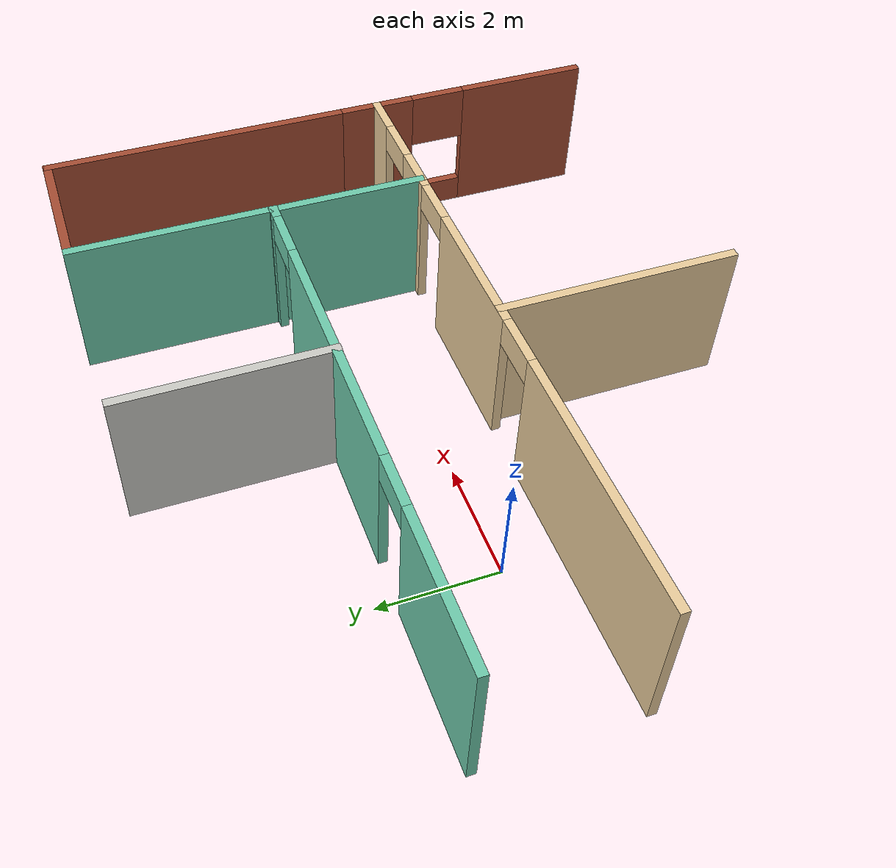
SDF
<sdf version="1.6">
 <model name="MyHouse">
  <link name="Wall_24">
   <pose>1.825 1.61043 0 0 -0 0</pose>
   <visual name="Wall_24_Visual_4">
    <pose>3.83485 0 2.25 0 -0 0</pose>
    <geometry><box><size>0.9 0.15 0.5</size></box></geometry>
    <material>
     <script><uri>file://media/materials/scripts/gazebo.material</uri><name>Gazebo/Grey</name></script>
     <ambient>0.435294 0.796078 0.67451 1</ambient>
    </material>
    <meta><layer>0</layer></meta>
   </visual>
   <visual name="Wall_24_Visual_3">
    <pose>-1.53839 0 2.25 0 -0 0</pose>
    <geometry><box><size>0.9 0.15 0.5</size></box></geometry>
    <material>
     <script><uri>file://media/materials/scripts/gazebo.material</uri><name>Gazebo/Grey</name></script>
     <ambient>0.435294 0.796078 0.67451 1</ambient>
    </material>
    <meta><layer>0</layer></meta>
   </visual>
   <visual name="Wall_24_Visual_0">
    <pose>-3.28169 0 1.25 0 -0 0</pose>
    <geometry><box><size>2.58661 0.15 2.5</size></box></geometry>
    <material>
     <script><uri>file://media/materials/scripts/gazebo.material</uri><name>Gazebo/Grey</name></script>
     <ambient>0.435294 0.796078 0.67451 1</ambient>
    </material>
    <meta><layer>0</layer></meta>
   </visual>
   <visual name="Wall_24_Visual_2">
    <pose>4.42993 0 1.25 0 -0 0</pose>
    <geometry><box><size>0.290146 0.15 2.5</size></box></geometry>
    <material>
     <script><uri>file://media/materials/scripts/gazebo.material</uri><name>Gazebo/Grey</name></script>
     <ambient>0.435294 0.796078 0.67451 1</ambient>
    </material>
    <meta><layer>0</layer></meta>
   </visual>
   <visual name="Wall_24_Visual_1">
    <pose>1.14823 0 1.25 0 -0 0</pose>
    <geometry><box><size>4.47324 0.15 2.5</size></box></geometry>
    <material>
     <script><uri>file://media/materials/scripts/gazebo.material</uri><name>Gazebo/Grey</name></script>
     <ambient>0.435294 0.796078 0.67451 1</ambient>
    </material>
    <meta><layer>0</layer></meta>
   </visual>
   <collision name="Wall_24_Collision_1">
    <pose>1.14823 0 1.25 0 -0 0</pose>
    <geometry><box><size>4.47324 0.15 2.5</size></box></geometry>
    <surface>
     <friction>
      <ode><mu>1</mu><mu2>1</mu2><fdir1>0 0 0</fdir1><slip1>0</slip1><slip2>0</slip2></ode>
      <torsional>
       <coefficient>1</coefficient>
       <patch_radius>0</patch_radius>
       <surface_radius>0</surface_radius>
       <use_patch_radius>1</use_patch_radius>
       <ode><slip>0</slip></ode>
      </torsional>
     </friction>
     <bounce><restitution_coefficient>0</restitution_coefficient><threshold>1e+06</threshold></bounce>
     <contact>
      <collide_without_contact>0</collide_without_contact>
      <collide_without_contact_bitmask>1</collide_without_contact_bitmask>
      <collide_bitmask>1</collide_bitmask>
      <ode>
       <soft_cfm>0</soft_cfm>
       <soft_erp>0.2</soft_erp>
       <kp>1e+13</kp>
       <kd>1</kd>
       <max_vel>0.01</max_vel>
       <min_depth>0</min_depth>
      </ode>
      <bullet>
       <split_impulse>1</split_impulse>
       <split_impulse_penetration_threshold>-0.01</split_impulse_penetration_threshold>
       <soft_cfm>0</soft_cfm>
       <soft_erp>0.2</soft_erp>
       <kp>1e+13</kp>
       <kd>1</kd>
      </bullet>
     </contact>
    </surface>
   </collision>
   <collision name="Wall_24_Collision_2">
    <pose>4.42993 0 1.25 0 -0 0</pose>
    <geometry><box><size>0.290146 0.15 2.5</size></box></geometry>
    <surface>
     <friction>
      <ode><mu>1</mu><mu2>1</mu2><fdir1>0 0 0</fdir1><slip1>0</slip1><slip2>0</slip2></ode>
      <torsional>
       <coefficient>1</coefficient>
       <patch_radius>0</patch_radius>
       <surface_radius>0</surface_radius>
       <use_patch_radius>1</use_patch_radius>
       <ode><slip>0</slip></ode>
      </torsional>
     </friction>
     <bounce><restitution_coefficient>0</restitution_coefficient><threshold>1e+06</threshold></bounce>
     <contact>
      <collide_without_contact>0</collide_without_contact>
      <collide_without_contact_bitmask>1</collide_without_contact_bitmask>
      <collide_bitmask>1</collide_bitmask>
      <ode>
       <soft_cfm>0</soft_cfm>
       <soft_erp>0.2</soft_erp>
       <kp>1e+13</kp>
       <kd>1</kd>
       <max_vel>0.01</max_vel>
       <min_depth>0</min_depth>
      </ode>
      <bullet>
       <split_impulse>1</split_impulse>
       <split_impulse_penetration_threshold>-0.01</split_impulse_penetration_threshold>
       <soft_cfm>0</soft_cfm>
       <soft_erp>0.2</soft_erp>
       <kp>1e+13</kp>
       <kd>1</kd>
      </bullet>
     </contact>
    </surface>
   </collision>
   <collision name="Wall_24_Collision_0">
    <pose>-3.28169 0 1.25 0 -0 0</pose>
    <geometry><box><size>2.58661 0.15 2.5</size></box></geometry>
    <surface>
     <friction>
      <ode><mu>1</mu><mu2>1</mu2><fdir1>0 0 0</fdir1><slip1>0</slip1><slip2>0</slip2></ode>
      <torsional>
       <coefficient>1</coefficient>
       <patch_radius>0</patch_radius>
       <surface_radius>0</surface_radius>
       <use_patch_radius>1</use_patch_radius>
       <ode><slip>0</slip></ode>
      </torsional>
     </friction>
     <bounce><restitution_coefficient>0</restitution_coefficient><threshold>1e+06</threshold></bounce>
     <contact>
      <collide_without_contact>0</collide_without_contact>
      <collide_without_contact_bitmask>1</collide_without_contact_bitmask>
      <collide_bitmask>1</collide_bitmask>
      <ode>
       <soft_cfm>0</soft_cfm>
       <soft_erp>0.2</soft_erp>
       <kp>1e+13</kp>
       <kd>1</kd>
       <max_vel>0.01</max_vel>
       <min_depth>0</min_depth>
      </ode>
      <bullet>
       <split_impulse>1</split_impulse>
       <split_impulse_penetration_threshold>-0.01</split_impulse_penetration_threshold>
       <soft_cfm>0</soft_cfm>
       <soft_erp>0.2</soft_erp>
       <kp>1e+13</kp>
       <kd>1</kd>
      </bullet>
     </contact>
    </surface>
   </collision>
   <collision name="Wall_24_Collision_4">
    <pose>3.83485 0 2.25 0 -0 0</pose>
    <geometry><box><size>0.9 0.15 0.5</size></box></geometry>
    <surface>
     <friction>
      <ode><mu>1</mu><mu2>1</mu2><fdir1>0 0 0</fdir1><slip1>0</slip1><slip2>0</slip2></ode>
      <torsional>
       <coefficient>1</coefficient>
       <patch_radius>0</patch_radius>
       <surface_radius>0</surface_radius>
       <use_patch_radius>1</use_patch_radius>
       <ode><slip>0</slip></ode>
      </torsional>
     </friction>
     <bounce><restitution_coefficient>0</restitution_coefficient><threshold>1e+06</threshold></bounce>
     <contact>
      <collide_without_contact>0</collide_without_contact>
      <collide_without_contact_bitmask>1</collide_without_contact_bitmask>
      <collide_bitmask>1</collide_bitmask>
      <ode>
       <soft_cfm>0</soft_cfm>
       <soft_erp>0.2</soft_erp>
       <kp>1e+13</kp>
       <kd>1</kd>
       <max_vel>0.01</max_vel>
       <min_depth>0</min_depth>
      </ode>
      <bullet>
       <split_impulse>1</split_impulse>
       <split_impulse_penetration_threshold>-0.01</split_impulse_penetration_threshold>
       <soft_cfm>0</soft_cfm>
       <soft_erp>0.2</soft_erp>
       <kp>1e+13</kp>
       <kd>1</kd>
      </bullet>
     </contact>
    </surface>
   </collision>
   <collision name="Wall_24_Collision_3">
    <pose>-1.53839 0 2.25 0 -0 0</pose>
    <geometry><box><size>0.9 0.15 0.5</size></box></geometry>
    <surface>
     <friction>
      <ode><mu>1</mu><mu2>1</mu2><fdir1>0 0 0</fdir1><slip1>0</slip1><slip2>0</slip2></ode>
      <torsional>
       <coefficient>1</coefficient>
       <patch_radius>0</patch_radius>
       <surface_radius>0</surface_radius>
       <use_patch_radius>1</use_patch_radius>
       <ode><slip>0</slip></ode>
      </torsional>
     </friction>
     <bounce><restitution_coefficient>0</restitution_coefficient><threshold>1e+06</threshold></bounce>
     <contact>
      <collide_without_contact>0</collide_without_contact>
      <collide_without_contact_bitmask>1</collide_without_contact_bitmask>
      <collide_bitmask>1</collide_bitmask>
      <ode>
       <soft_cfm>0</soft_cfm>
       <soft_erp>0.2</soft_erp>
       <kp>1e+13</kp>
       <kd>1</kd>
       <max_vel>0.01</max_vel>
       <min_depth>0</min_depth>
      </ode>
      <bullet>
       <split_impulse>1</split_impulse>
       <split_impulse_penetration_threshold>-0.01</split_impulse_penetration_threshold>
       <soft_cfm>0</soft_cfm>
       <soft_erp>0.2</soft_erp>
       <kp>1e+13</kp>
       <kd>1</kd>
      </bullet>
     </contact>
    </surface>
   </collision>
  </link>
  <link name="Wall_37">
   <pose>1.825 -1 0 0 -0 0</pose>
   <inertial>
    <mass>1</mass>
    <inertia><ixx>1</ixx><ixy>0</ixy><ixz>0</ixz><iyy>1</iyy><iyz>0</iyz><izz>1</izz></inertia>
   </inertial>
   <visual name="Wall_37_Visual_4">
    <pose>3.83485 0 2.25 0 -0 0</pose>
    <geometry><box><size>0.9 0.15 0.5</size></box></geometry>
    <material>
     <script><uri>file://media/materials/scripts/gazebo.material</uri><name>Gazebo/Grey</name></script>
     <ambient>0.922 0.808 0.616 1</ambient>
     <shader type="vertex"><normal_map>__default__</normal_map></shader>
     <diffuse>0.7 0.7 0.7 1</diffuse>
     <specular>0.01 0.01 0.01 1</specular>
     <emissive>0 0 0 1</emissive>
    </material>
    <meta><layer>0</layer></meta>
   </visual>
   <visual name="Wall_37_Visual_1">
    <pose>2.09254 0 1.25 0 -0 0</pose>
    <geometry><box><size>2.58463 0.15 2.5</size></box></geometry>
    <material>
     <script><uri>file://media/materials/scripts/gazebo.material</uri><name>Gazebo/Grey</name></script>
     <ambient>0.922 0.808 0.616 1</ambient>
     <shader type="vertex"><normal_map>__default__</normal_map></shader>
     <diffuse>0.7 0.7 0.7 1</diffuse>
     <specular>0.01 0.01 0.01 1</specular>
     <emissive>0 0 0 1</emissive>
    </material>
    <meta><layer>0</layer></meta>
   </visual>
   <visual name="Wall_37_Visual_0">
    <pose>-2.33739 0 1.25 0 -0 0</pose>
    <geometry><box><size>4.47523 0.15 2.5</size></box></geometry>
    <material>
     <script><uri>file://media/materials/scripts/gazebo.material</uri><name>Gazebo/Grey</name></script>
     <ambient>0.922 0.808 0.616 1</ambient>
     <shader type="vertex"><normal_map>__default__</normal_map></shader>
     <diffuse>0.7 0.7 0.7 1</diffuse>
     <specular>0.01 0.01 0.01 1</specular>
     <emissive>0 0 0 1</emissive>
    </material>
    <meta><layer>0</layer></meta>
   </visual>
   <visual name="Wall_37_Visual_3">
    <pose>0.350228 0 2.25 0 -0 0</pose>
    <geometry><box><size>0.9 0.15 0.5</size></box></geometry>
    <material>
     <script><uri>file://media/materials/scripts/gazebo.material</uri><name>Gazebo/Grey</name></script>
     <ambient>0.922 0.808 0.616 1</ambient>
     <shader type="vertex"><normal_map>__default__</normal_map></shader>
     <diffuse>0.7 0.7 0.7 1</diffuse>
     <specular>0.01 0.01 0.01 1</specular>
     <emissive>0 0 0 1</emissive>
    </material>
    <meta><layer>0</layer></meta>
   </visual>
   <visual name="Wall_37_Visual_2">
    <pose>4.42993 0 1.25 0 -0 0</pose>
    <geometry><box><size>0.290146 0.15 2.5</size></box></geometry>
    <material>
     <script><uri>file://media/materials/scripts/gazebo.material</uri><name>Gazebo/Grey</name></script>
     <ambient>0.922 0.808 0.616 1</ambient>
     <shader type="vertex"><normal_map>__default__</normal_map></shader>
     <diffuse>0.7 0.7 0.7 1</diffuse>
     <specular>0.01 0.01 0.01 1</specular>
     <emissive>0 0 0 1</emissive>
    </material>
    <meta><layer>0</layer></meta>
   </visual>
   <collision name="Wall_37_Collision_0">
    <pose>-2.33739 0 1.25 0 -0 0</pose>
    <geometry><box><size>4.47523 0.15 2.5</size></box></geometry>
    <surface>
     <friction>
      <ode><mu>1</mu><mu2>1</mu2><fdir1>0 0 0</fdir1><slip1>0</slip1><slip2>0</slip2></ode>
      <torsional>
       <coefficient>1</coefficient>
       <patch_radius>0</patch_radius>
       <surface_radius>0</surface_radius>
       <use_patch_radius>1</use_patch_radius>
       <ode><slip>0</slip></ode>
      </torsional>
     </friction>
     <bounce><restitution_coefficient>0</restitution_coefficient><threshold>1e+06</threshold></bounce>
     <contact>
      <collide_without_contact>0</collide_without_contact>
      <collide_without_contact_bitmask>1</collide_without_contact_bitmask>
      <collide_bitmask>1</collide_bitmask>
      <ode>
       <soft_cfm>0</soft_cfm>
       <soft_erp>0.2</soft_erp>
       <kp>1e+13</kp>
       <kd>1</kd>
       <max_vel>0.01</max_vel>
       <min_depth>0</min_depth>
      </ode>
      <bullet>
       <split_impulse>1</split_impulse>
       <split_impulse_penetration_threshold>-0.01</split_impulse_penetration_threshold>
       <soft_cfm>0</soft_cfm>
       <soft_erp>0.2</soft_erp>
       <kp>1e+13</kp>
       <kd>1</kd>
      </bullet>
     </contact>
    </surface>
   </collision>
   <collision name="Wall_37_Collision_4">
    <pose>3.83485 0 2.25 0 -0 0</pose>
    <geometry><box><size>0.9 0.15 0.5</size></box></geometry>
    <surface>
     <friction>
      <ode><mu>1</mu><mu2>1</mu2><fdir1>0 0 0</fdir1><slip1>0</slip1><slip2>0</slip2></ode>
      <torsional>
       <coefficient>1</coefficient>
       <patch_radius>0</patch_radius>
       <surface_radius>0</surface_radius>
       <use_patch_radius>1</use_patch_radius>
       <ode><slip>0</slip></ode>
      </torsional>
     </friction>
     <bounce><restitution_coefficient>0</restitution_coefficient><threshold>1e+06</threshold></bounce>
     <contact>
      <collide_without_contact>0</collide_without_contact>
      <collide_without_contact_bitmask>1</collide_without_contact_bitmask>
      <collide_bitmask>1</collide_bitmask>
      <ode>
       <soft_cfm>0</soft_cfm>
       <soft_erp>0.2</soft_erp>
       <kp>1e+13</kp>
       <kd>1</kd>
       <max_vel>0.01</max_vel>
       <min_depth>0</min_depth>
      </ode>
      <bullet>
       <split_impulse>1</split_impulse>
       <split_impulse_penetration_threshold>-0.01</split_impulse_penetration_threshold>
       <soft_cfm>0</soft_cfm>
       <soft_erp>0.2</soft_erp>
       <kp>1e+13</kp>
       <kd>1</kd>
      </bullet>
     </contact>
    </surface>
   </collision>
   <collision name="Wall_37_Collision_2">
    <pose>4.42993 0 1.25 0 -0 0</pose>
    <geometry><box><size>0.290146 0.15 2.5</size></box></geometry>
    <surface>
     <friction>
      <ode><mu>1</mu><mu2>1</mu2><fdir1>0 0 0</fdir1><slip1>0</slip1><slip2>0</slip2></ode>
      <torsional>
       <coefficient>1</coefficient>
       <patch_radius>0</patch_radius>
       <surface_radius>0</surface_radius>
       <use_patch_radius>1</use_patch_radius>
       <ode><slip>0</slip></ode>
      </torsional>
     </friction>
     <bounce><restitution_coefficient>0</restitution_coefficient><threshold>1e+06</threshold></bounce>
     <contact>
      <collide_without_contact>0</collide_without_contact>
      <collide_without_contact_bitmask>1</collide_without_contact_bitmask>
      <collide_bitmask>1</collide_bitmask>
      <ode>
       <soft_cfm>0</soft_cfm>
       <soft_erp>0.2</soft_erp>
       <kp>1e+13</kp>
       <kd>1</kd>
       <max_vel>0.01</max_vel>
       <min_depth>0</min_depth>
      </ode>
      <bullet>
       <split_impulse>1</split_impulse>
       <split_impulse_penetration_threshold>-0.01</split_impulse_penetration_threshold>
       <soft_cfm>0</soft_cfm>
       <soft_erp>0.2</soft_erp>
       <kp>1e+13</kp>
       <kd>1</kd>
      </bullet>
     </contact>
    </surface>
   </collision>
   <collision name="Wall_37_Collision_1">
    <pose>2.09254 0 1.25 0 -0 0</pose>
    <geometry><box><size>2.58463 0.15 2.5</size></box></geometry>
    <surface>
     <friction>
      <ode><mu>1</mu><mu2>1</mu2><fdir1>0 0 0</fdir1><slip1>0</slip1><slip2>0</slip2></ode>
      <torsional>
       <coefficient>1</coefficient>
       <patch_radius>0</patch_radius>
       <surface_radius>0</surface_radius>
       <use_patch_radius>1</use_patch_radius>
       <ode><slip>0</slip></ode>
      </torsional>
     </friction>
     <bounce><restitution_coefficient>0</restitution_coefficient><threshold>1e+06</threshold></bounce>
     <contact>
      <collide_without_contact>0</collide_without_contact>
      <collide_without_contact_bitmask>1</collide_without_contact_bitmask>
      <collide_bitmask>1</collide_bitmask>
      <ode>
       <soft_cfm>0</soft_cfm>
       <soft_erp>0.2</soft_erp>
       <kp>1e+13</kp>
       <kd>1</kd>
       <max_vel>0.01</max_vel>
       <min_depth>0</min_depth>
      </ode>
      <bullet>
       <split_impulse>1</split_impulse>
       <split_impulse_penetration_threshold>-0.01</split_impulse_penetration_threshold>
       <soft_cfm>0</soft_cfm>
       <soft_erp>0.2</soft_erp>
       <kp>1e+13</kp>
       <kd>1</kd>
      </bullet>
     </contact>
    </surface>
   </collision>
   <collision name="Wall_37_Collision_3">
    <pose>0.350228 0 2.25 0 -0 0</pose>
    <geometry><box><size>0.9 0.15 0.5</size></box></geometry>
    <surface>
     <friction>
      <ode><mu>1</mu><mu2>1</mu2><fdir1>0 0 0</fdir1><slip1>0</slip1><slip2>0</slip2></ode>
      <torsional>
       <coefficient>1</coefficient>
       <patch_radius>0</patch_radius>
       <surface_radius>0</surface_radius>
       <use_patch_radius>1</use_patch_radius>
       <ode><slip>0</slip></ode>
      </torsional>
     </friction>
     <bounce><restitution_coefficient>0</restitution_coefficient><threshold>1e+06</threshold></bounce>
     <contact>
      <collide_without_contact>0</collide_without_contact>
      <collide_without_contact_bitmask>1</collide_without_contact_bitmask>
      <collide_bitmask>1</collide_bitmask>
      <ode>
       <soft_cfm>0</soft_cfm>
       <soft_erp>0.2</soft_erp>
       <kp>1e+13</kp>
       <kd>1</kd>
       <max_vel>0.01</max_vel>
       <min_depth>0</min_depth>
      </ode>
      <bullet>
       <split_impulse>1</split_impulse>
       <split_impulse_penetration_threshold>-0.01</split_impulse_penetration_threshold>
       <soft_cfm>0</soft_cfm>
       <soft_erp>0.2</soft_erp>
       <kp>1e+13</kp>
       <kd>1</kd>
      </bullet>
     </contact>
    </surface>
   </collision>
  </link>
  <link name="Wall_44">
   <pose>6.31691 0.324362 0 0 -0 1.5708</pose>
   <inertial>
    <inertia><ixx>0</ixx><ixy>0</ixy><ixz>0</ixz><iyy>0</iyy><iyz>0</iyz><izz>0</izz></inertia>
    <mass>0</mass>
   </inertial>
   <visual name="Wall_44_Visual">
    <pose>0 0 1.25 0 -0 0</pose>
    <geometry><box><size>2.74589 0.15 2.5</size></box></geometry>
    <material>
     <script><uri>file://media/materials/scripts/gazebo.material</uri><name>Gazebo/Grey</name></script>
     <ambient>0.435294 0.796078 0.67451 1</ambient>
    </material>
    <meta><layer>0</layer></meta>
   </visual>
   <collision name="Wall_44_Collision">
    <pose>0 0 1.25 0 -0 0</pose>
    <geometry><box><size>2.74589 0.15 2.5</size></box></geometry>
    <surface>
     <friction>
      <ode><mu>1</mu><mu2>1</mu2><fdir1>0 0 0</fdir1><slip1>0</slip1><slip2>0</slip2></ode>
      <torsional>
       <coefficient>1</coefficient>
       <patch_radius>0</patch_radius>
       <surface_radius>0</surface_radius>
       <use_patch_radius>1</use_patch_radius>
       <ode><slip>0</slip></ode>
      </torsional>
     </friction>
     <bounce><restitution_coefficient>0</restitution_coefficient><threshold>1e+06</threshold></bounce>
     <contact>
      <collide_without_contact>0</collide_without_contact>
      <collide_without_contact_bitmask>1</collide_without_contact_bitmask>
      <collide_bitmask>1</collide_bitmask>
      <ode>
       <soft_cfm>0</soft_cfm>
       <soft_erp>0.2</soft_erp>
       <kp>1e+13</kp>
       <kd>1</kd>
       <max_vel>0.01</max_vel>
       <min_depth>0</min_depth>
      </ode>
      <bullet>
       <split_impulse>1</split_impulse>
       <split_impulse_penetration_threshold>-0.01</split_impulse_penetration_threshold>
       <soft_cfm>0</soft_cfm>
       <soft_erp>0.2</soft_erp>
       <kp>1e+13</kp>
       <kd>1</kd>
      </bullet>
     </contact>
    </surface>
   </collision>
  </link>
  <link name="Wall_46">
   <pose>6.325 3.31043 0 0 -0 1.5708</pose>
   <visual name="Wall_46_Visual">
    <pose>0 0 1.25 0 -0 0</pose>
    <geometry><box><size>3.55 0.15 2.5</size></box></geometry>
    <material>
     <script><uri>file://media/materials/scripts/gazebo.material</uri><name>Gazebo/Grey</name></script>
     <ambient>0.435294 0.796078 0.67451 1</ambient>
    </material>
    <meta><layer>0</layer></meta>
   </visual>
   <collision name="Wall_46_Collision">
    <pose>0 0 1.25 0 -0 0</pose>
    <geometry><box><size>3.55 0.15 2.5</size></box></geometry>
    <surface>
     <friction>
      <ode><mu>1</mu><mu2>1</mu2><fdir1>0 0 0</fdir1><slip1>0</slip1><slip2>0</slip2></ode>
      <torsional>
       <coefficient>1</coefficient>
       <patch_radius>0</patch_radius>
       <surface_radius>0</surface_radius>
       <use_patch_radius>1</use_patch_radius>
       <ode><slip>0</slip></ode>
      </torsional>
     </friction>
     <bounce><restitution_coefficient>0</restitution_coefficient><threshold>1e+06</threshold></bounce>
     <contact>
      <collide_without_contact>0</collide_without_contact>
      <collide_without_contact_bitmask>1</collide_without_contact_bitmask>
      <collide_bitmask>1</collide_bitmask>
      <ode>
       <soft_cfm>0</soft_cfm>
       <soft_erp>0.2</soft_erp>
       <kp>1e+13</kp>
       <kd>1</kd>
       <max_vel>0.01</max_vel>
       <min_depth>0</min_depth>
      </ode>
      <bullet>
       <split_impulse>1</split_impulse>
       <split_impulse_penetration_threshold>-0.01</split_impulse_penetration_threshold>
       <soft_cfm>0</soft_cfm>
       <soft_erp>0.2</soft_erp>
       <kp>1e+13</kp>
       <kd>1</kd>
      </bullet>
     </contact>
    </surface>
   </collision>
  </link>
  <link name="Wall_48">
   <pose>7.5 -1.005 0 0 -0 0</pose>
   <visual name="Wall_48_Visual_2">
    <pose>-0.004733 0 2.25 0 -0 0</pose>
    <geometry><box><size>0.9 0.15 0.5</size></box></geometry>
    <material>
     <script><uri>file://media/materials/scripts/gazebo.material</uri><name>Gazebo/Grey</name></script>
     <ambient>0.921569 0.807843 0.615686 1</ambient>
    </material>
    <meta><layer>0</layer></meta>
   </visual>
   <visual name="Wall_48_Visual_1">
    <pose>0.847634 0 1.25 0 -0 0</pose>
    <geometry><box><size>0.804733 0.15 2.5</size></box></geometry>
    <material>
     <script><uri>file://media/materials/scripts/gazebo.material</uri><name>Gazebo/Grey</name></script>
     <ambient>0.921569 0.807843 0.615686 1</ambient>
    </material>
    <meta><layer>0</layer></meta>
   </visual>
   <visual name="Wall_48_Visual_0">
    <pose>-0.852366 0 1.25 0 -0 0</pose>
    <geometry><box><size>0.795267 0.15 2.5</size></box></geometry>
    <material>
     <script><uri>file://media/materials/scripts/gazebo.material</uri><name>Gazebo/Grey</name></script>
     <ambient>0.921569 0.807843 0.615686 1</ambient>
    </material>
    <meta><layer>0</layer></meta>
   </visual>
   <collision name="Wall_48_Collision_1">
    <pose>0.847634 0 1.25 0 -0 0</pose>
    <geometry><box><size>0.804733 0.15 2.5</size></box></geometry>
    <surface>
     <friction>
      <ode><mu>1</mu><mu2>1</mu2><fdir1>0 0 0</fdir1><slip1>0</slip1><slip2>0</slip2></ode>
      <torsional>
       <coefficient>1</coefficient>
       <patch_radius>0</patch_radius>
       <surface_radius>0</surface_radius>
       <use_patch_radius>1</use_patch_radius>
       <ode><slip>0</slip></ode>
      </torsional>
     </friction>
     <bounce><restitution_coefficient>0</restitution_coefficient><threshold>1e+06</threshold></bounce>
     <contact>
      <collide_without_contact>0</collide_without_contact>
      <collide_without_contact_bitmask>1</collide_without_contact_bitmask>
      <collide_bitmask>1</collide_bitmask>
      <ode>
       <soft_cfm>0</soft_cfm>
       <soft_erp>0.2</soft_erp>
       <kp>1e+13</kp>
       <kd>1</kd>
       <max_vel>0.01</max_vel>
       <min_depth>0</min_depth>
      </ode>
      <bullet>
       <split_impulse>1</split_impulse>
       <split_impulse_penetration_threshold>-0.01</split_impulse_penetration_threshold>
       <soft_cfm>0</soft_cfm>
       <soft_erp>0.2</soft_erp>
       <kp>1e+13</kp>
       <kd>1</kd>
      </bullet>
     </contact>
    </surface>
   </collision>
   <collision name="Wall_48_Collision_0">
    <pose>-0.852366 0 1.25 0 -0 0</pose>
    <geometry><box><size>0.795267 0.15 2.5</size></box></geometry>
    <surface>
     <friction>
      <ode><mu>1</mu><mu2>1</mu2><fdir1>0 0 0</fdir1><slip1>0</slip1><slip2>0</slip2></ode>
      <torsional>
       <coefficient>1</coefficient>
       <patch_radius>0</patch_radius>
       <surface_radius>0</surface_radius>
       <use_patch_radius>1</use_patch_radius>
       <ode><slip>0</slip></ode>
      </torsional>
     </friction>
     <bounce><restitution_coefficient>0</restitution_coefficient><threshold>1e+06</threshold></bounce>
     <contact>
      <collide_without_contact>0</collide_without_contact>
      <collide_without_contact_bitmask>1</collide_without_contact_bitmask>
      <collide_bitmask>1</collide_bitmask>
      <ode>
       <soft_cfm>0</soft_cfm>
       <soft_erp>0.2</soft_erp>
       <kp>1e+13</kp>
       <kd>1</kd>
       <max_vel>0.01</max_vel>
       <min_depth>0</min_depth>
      </ode>
      <bullet>
       <split_impulse>1</split_impulse>
       <split_impulse_penetration_threshold>-0.01</split_impulse_penetration_threshold>
       <soft_cfm>0</soft_cfm>
       <soft_erp>0.2</soft_erp>
       <kp>1e+13</kp>
       <kd>1</kd>
      </bullet>
     </contact>
    </surface>
   </collision>
   <collision name="Wall_48_Collision_2">
    <pose>-0.004733 0 2.25 0 -0 0</pose>
    <geometry><box><size>0.9 0.15 0.5</size></box></geometry>
    <surface>
     <friction>
      <ode><mu>1</mu><mu2>1</mu2><fdir1>0 0 0</fdir1><slip1>0</slip1><slip2>0</slip2></ode>
      <torsional>
       <coefficient>1</coefficient>
       <patch_radius>0</patch_radius>
       <surface_radius>0</surface_radius>
       <use_patch_radius>1</use_patch_radius>
       <ode><slip>0</slip></ode>
      </torsional>
     </friction>
     <bounce><restitution_coefficient>0</restitution_coefficient><threshold>1e+06</threshold></bounce>
     <contact>
      <collide_without_contact>0</collide_without_contact>
      <collide_without_contact_bitmask>1</collide_without_contact_bitmask>
      <collide_bitmask>1</collide_bitmask>
      <ode>
       <soft_cfm>0</soft_cfm>
       <soft_erp>0.2</soft_erp>
       <kp>1e+13</kp>
       <kd>1</kd>
       <max_vel>0.01</max_vel>
       <min_depth>0</min_depth>
      </ode>
      <bullet>
       <split_impulse>1</split_impulse>
       <split_impulse_penetration_threshold>-0.01</split_impulse_penetration_threshold>
       <soft_cfm>0</soft_cfm>
       <soft_erp>0.2</soft_erp>
       <kp>1e+13</kp>
       <kd>1</kd>
      </bullet>
     </contact>
    </surface>
   </collision>
  </link>
  <link name="Wall_50">
   <pose>8.675 -2.69207 0 0 -0 1.5708</pose>
   <visual name="Wall_50_Visual_2">
    <pose>1.69072 0 1.5 0 -0 0</pose>
    <geometry><box><size>1.36355 0.15 2</size></box></geometry>
    <material>
     <script><uri>file://media/materials/scripts/gazebo.material</uri><name>Gazebo/Bricks</name></script>
     <ambient>1 1 1 1</ambient>
    </material>
    <meta><layer>0</layer></meta>
   </visual>
   <visual name="Wall_50_Visual_3">
    <pose>0.508947 0 2 0 -0 0</pose>
    <geometry><box><size>1 0.15 1</size></box></geometry>
    <material>
     <script><uri>file://media/materials/scripts/gazebo.material</uri><name>Gazebo/Bricks</name></script>
     <ambient>1 1 1 1</ambient>
    </material>
    <meta><layer>0</layer></meta>
   </visual>
   <visual name="Wall_50_Visual_0">
    <pose>-1.18178 0 1.25 0 -0 0</pose>
    <geometry><box><size>2.38145 0.15 2.5</size></box></geometry>
    <material>
     <script><uri>file://media/materials/scripts/gazebo.material</uri><name>Gazebo/Bricks</name></script>
     <ambient>1 1 1 1</ambient>
    </material>
    <meta><layer>0</layer></meta>
   </visual>
   <visual name="Wall_50_Visual_1">
    <pose>1.19072 0 0.25 0 -0 0</pose>
    <geometry><box><size>2.36355 0.15 0.5</size></box></geometry>
    <material>
     <script><uri>file://media/materials/scripts/gazebo.material</uri><name>Gazebo/Bricks</name></script>
     <ambient>1 1 1 1</ambient>
    </material>
    <meta><layer>0</layer></meta>
   </visual>
   <collision name="Wall_50_Collision_3">
    <pose>0.508947 0 2 0 -0 0</pose>
    <geometry><box><size>1 0.15 1</size></box></geometry>
    <surface>
     <friction>
      <ode><mu>1</mu><mu2>1</mu2><fdir1>0 0 0</fdir1><slip1>0</slip1><slip2>0</slip2></ode>
      <torsional>
       <coefficient>1</coefficient>
       <patch_radius>0</patch_radius>
       <surface_radius>0</surface_radius>
       <use_patch_radius>1</use_patch_radius>
       <ode><slip>0</slip></ode>
      </torsional>
     </friction>
     <bounce><restitution_coefficient>0</restitution_coefficient><threshold>1e+06</threshold></bounce>
     <contact>
      <collide_without_contact>0</collide_without_contact>
      <collide_without_contact_bitmask>1</collide_without_contact_bitmask>
      <collide_bitmask>1</collide_bitmask>
      <ode>
       <soft_cfm>0</soft_cfm>
       <soft_erp>0.2</soft_erp>
       <kp>1e+13</kp>
       <kd>1</kd>
       <max_vel>0.01</max_vel>
       <min_depth>0</min_depth>
      </ode>
      <bullet>
       <split_impulse>1</split_impulse>
       <split_impulse_penetration_threshold>-0.01</split_impulse_penetration_threshold>
       <soft_cfm>0</soft_cfm>
       <soft_erp>0.2</soft_erp>
       <kp>1e+13</kp>
       <kd>1</kd>
      </bullet>
     </contact>
    </surface>
   </collision>
   <collision name="Wall_50_Collision_1">
    <pose>1.19072 0 0.25 0 -0 0</pose>
    <geometry><box><size>2.36355 0.15 0.5</size></box></geometry>
    <surface>
     <friction>
      <ode><mu>1</mu><mu2>1</mu2><fdir1>0 0 0</fdir1><slip1>0</slip1><slip2>0</slip2></ode>
      <torsional>
       <coefficient>1</coefficient>
       <patch_radius>0</patch_radius>
       <surface_radius>0</surface_radius>
       <use_patch_radius>1</use_patch_radius>
       <ode><slip>0</slip></ode>
      </torsional>
     </friction>
     <bounce><restitution_coefficient>0</restitution_coefficient><threshold>1e+06</threshold></bounce>
     <contact>
      <collide_without_contact>0</collide_without_contact>
      <collide_without_contact_bitmask>1</collide_without_contact_bitmask>
      <collide_bitmask>1</collide_bitmask>
      <ode>
       <soft_cfm>0</soft_cfm>
       <soft_erp>0.2</soft_erp>
       <kp>1e+13</kp>
       <kd>1</kd>
       <max_vel>0.01</max_vel>
       <min_depth>0</min_depth>
      </ode>
      <bullet>
       <split_impulse>1</split_impulse>
       <split_impulse_penetration_threshold>-0.01</split_impulse_penetration_threshold>
       <soft_cfm>0</soft_cfm>
       <soft_erp>0.2</soft_erp>
       <kp>1e+13</kp>
       <kd>1</kd>
      </bullet>
     </contact>
    </surface>
   </collision>
   <collision name="Wall_50_Collision_0">
    <pose>-1.18178 0 1.25 0 -0 0</pose>
    <geometry><box><size>2.38145 0.15 2.5</size></box></geometry>
    <surface>
     <friction>
      <ode><mu>1</mu><mu2>1</mu2><fdir1>0 0 0</fdir1><slip1>0</slip1><slip2>0</slip2></ode>
      <torsional>
       <coefficient>1</coefficient>
       <patch_radius>0</patch_radius>
       <surface_radius>0</surface_radius>
       <use_patch_radius>1</use_patch_radius>
       <ode><slip>0</slip></ode>
      </torsional>
     </friction>
     <bounce><restitution_coefficient>0</restitution_coefficient><threshold>1e+06</threshold></bounce>
     <contact>
      <collide_without_contact>0</collide_without_contact>
      <collide_without_contact_bitmask>1</collide_without_contact_bitmask>
      <collide_bitmask>1</collide_bitmask>
      <ode>
       <soft_cfm>0</soft_cfm>
       <soft_erp>0.2</soft_erp>
       <kp>1e+13</kp>
       <kd>1</kd>
       <max_vel>0.01</max_vel>
       <min_depth>0</min_depth>
      </ode>
      <bullet>
       <split_impulse>1</split_impulse>
       <split_impulse_penetration_threshold>-0.01</split_impulse_penetration_threshold>
       <soft_cfm>0</soft_cfm>
       <soft_erp>0.2</soft_erp>
       <kp>1e+13</kp>
       <kd>1</kd>
      </bullet>
     </contact>
    </surface>
   </collision>
   <collision name="Wall_50_Collision_2">
    <pose>1.69072 0 1.5 0 -0 0</pose>
    <geometry><box><size>1.36355 0.15 2</size></box></geometry>
    <surface>
     <friction>
      <ode><mu>1</mu><mu2>1</mu2><fdir1>0 0 0</fdir1><slip1>0</slip1><slip2>0</slip2></ode>
      <torsional>
       <coefficient>1</coefficient>
       <patch_radius>0</patch_radius>
       <surface_radius>0</surface_radius>
       <use_patch_radius>1</use_patch_radius>
       <ode><slip>0</slip></ode>
      </torsional>
     </friction>
     <bounce><restitution_coefficient>0</restitution_coefficient><threshold>1e+06</threshold></bounce>
     <contact>
      <collide_without_contact>0</collide_without_contact>
      <collide_without_contact_bitmask>1</collide_without_contact_bitmask>
      <collide_bitmask>1</collide_bitmask>
      <ode>
       <soft_cfm>0</soft_cfm>
       <soft_erp>0.2</soft_erp>
       <kp>1e+13</kp>
       <kd>1</kd>
       <max_vel>0.01</max_vel>
       <min_depth>0</min_depth>
      </ode>
      <bullet>
       <split_impulse>1</split_impulse>
       <split_impulse_penetration_threshold>-0.01</split_impulse_penetration_threshold>
       <soft_cfm>0</soft_cfm>
       <soft_erp>0.2</soft_erp>
       <kp>1e+13</kp>
       <kd>1</kd>
      </bullet>
     </contact>
    </surface>
   </collision>
  </link>
  <link name="Wall_51">
   <pose>8.675 2.30793 0 0 -0 1.5708</pose>
   <visual name="Wall_51_Visual">
    <pose>0 0 1.25 0 -0 0</pose>
    <geometry><box><size>5.555 0.15 2.5</size></box></geometry>
    <material>
     <script><uri>file://media/materials/scripts/gazebo.material</uri><name>Gazebo/Bricks</name></script>
     <ambient>1 1 1 1</ambient>
    </material>
    <meta><layer>0</layer></meta>
   </visual>
   <collision name="Wall_51_Collision">
    <pose>0 0 1.25 0 -0 0</pose>
    <geometry><box><size>5.555 0.15 2.5</size></box></geometry>
    <surface>
     <friction>
      <ode><mu>1</mu><mu2>1</mu2><fdir1>0 0 0</fdir1><slip1>0</slip1><slip2>0</slip2></ode>
      <torsional>
       <coefficient>1</coefficient>
       <patch_radius>0</patch_radius>
       <surface_radius>0</surface_radius>
       <use_patch_radius>1</use_patch_radius>
       <ode><slip>0</slip></ode>
      </torsional>
     </friction>
     <bounce><restitution_coefficient>0</restitution_coefficient><threshold>1e+06</threshold></bounce>
     <contact>
      <collide_without_contact>0</collide_without_contact>
      <collide_without_contact_bitmask>1</collide_without_contact_bitmask>
      <collide_bitmask>1</collide_bitmask>
      <ode>
       <soft_cfm>0</soft_cfm>
       <soft_erp>0.2</soft_erp>
       <kp>1e+13</kp>
       <kd>1</kd>
       <max_vel>0.01</max_vel>
       <min_depth>0</min_depth>
      </ode>
      <bullet>
       <split_impulse>1</split_impulse>
       <split_impulse_penetration_threshold>-0.01</split_impulse_penetration_threshold>
       <soft_cfm>0</soft_cfm>
       <soft_erp>0.2</soft_erp>
       <kp>1e+13</kp>
       <kd>1</kd>
      </bullet>
     </contact>
    </surface>
   </collision>
  </link>
  <link name="Wall_54">
   <pose>2.88588 -2.99506 0 0 0 -1.5708</pose>
   <inertial>
    <inertia><ixx>0</ixx><ixy>0</ixy><ixz>0</ixz><iyy>0</iyy><iyz>0</iyz><izz>0</izz></inertia>
    <mass>0</mass>
   </inertial>
   <visual name="Wall_54_Visual">
    <pose>0 0 1.25 0 -0 0</pose>
    <geometry><box><size>4.13336 0.15 2.5</size></box></geometry>
    <material>
     <script><uri>file://media/materials/scripts/gazebo.material</uri><name>Gazebo/Grey</name></script>
     <ambient>0.921569 0.807843 0.615686 1</ambient>
    </material>
    <meta><layer>0</layer></meta>
   </visual>
   <collision name="Wall_54_Collision">
    <pose>0 0 1.25 0 -0 0</pose>
    <geometry><box><size>4.13336 0.15 2.5</size></box></geometry>
    <surface>
     <friction>
      <ode><mu>1</mu><mu2>1</mu2><fdir1>0 0 0</fdir1><slip1>0</slip1><slip2>0</slip2></ode>
      <torsional>
       <coefficient>1</coefficient>
       <patch_radius>0</patch_radius>
       <surface_radius>0</surface_radius>
       <use_patch_radius>1</use_patch_radius>
       <ode><slip>0</slip></ode>
      </torsional>
     </friction>
     <bounce><restitution_coefficient>0</restitution_coefficient><threshold>1e+06</threshold></bounce>
     <contact>
      <collide_without_contact>0</collide_without_contact>
      <collide_without_contact_bitmask>1</collide_without_contact_bitmask>
      <collide_bitmask>1</collide_bitmask>
      <ode>
       <soft_cfm>0</soft_cfm>
       <soft_erp>0.2</soft_erp>
       <kp>1e+13</kp>
       <kd>1</kd>
       <max_vel>0.01</max_vel>
       <min_depth>0</min_depth>
      </ode>
      <bullet>
       <split_impulse>1</split_impulse>
       <split_impulse_penetration_threshold>-0.01</split_impulse_penetration_threshold>
       <soft_cfm>0</soft_cfm>
       <soft_erp>0.2</soft_erp>
       <kp>1e+13</kp>
       <kd>1</kd>
      </bullet>
     </contact>
    </surface>
   </collision>
  </link>
  <link name="Wall_56">
   <pose>2.87545 3.27568 0 0 -0 1.5708</pose>
   <visual name="Wall_56_Visual">
    <pose>0 0 1.25 0 -0 0</pose>
    <geometry><box><size>3.5 0.15 2.5</size></box></geometry>
    <material>
     <script><uri>file://media/materials/scripts/gazebo.material</uri><name>Gazebo/CeilingTiled</name></script>
     <ambient>0.435294 0.796078 0.67451 1</ambient>
    </material>
    <meta><layer>0</layer></meta>
   </visual>
   <collision name="Wall_56_Collision">
    <pose>0 0 1.25 0 -0 0</pose>
    <geometry><box><size>3.5 0.15 2.5</size></box></geometry>
    <surface>
     <friction>
      <ode><mu>1</mu><mu2>1</mu2><fdir1>0 0 0</fdir1><slip1>0</slip1><slip2>0</slip2></ode>
      <torsional>
       <coefficient>1</coefficient>
       <patch_radius>0</patch_radius>
       <surface_radius>0</surface_radius>
       <use_patch_radius>1</use_patch_radius>
       <ode><slip>0</slip></ode>
      </torsional>
     </friction>
     <bounce><restitution_coefficient>0</restitution_coefficient><threshold>1e+06</threshold></bounce>
     <contact>
      <collide_without_contact>0</collide_without_contact>
      <collide_without_contact_bitmask>1</collide_without_contact_bitmask>
      <collide_bitmask>1</collide_bitmask>
      <ode>
       <soft_cfm>0</soft_cfm>
       <soft_erp>0.2</soft_erp>
       <kp>1e+13</kp>
       <kd>1</kd>
       <max_vel>0.01</max_vel>
       <min_depth>0</min_depth>
      </ode>
      <bullet>
       <split_impulse>1</split_impulse>
       <split_impulse_penetration_threshold>-0.01</split_impulse_penetration_threshold>
       <soft_cfm>0</soft_cfm>
       <soft_erp>0.2</soft_erp>
       <kp>1e+13</kp>
       <kd>1</kd>
      </bullet>
     </contact>
    </surface>
   </collision>
  </link>
  <link name="Wall_65">
   <pose>7.5 5.01043 0 0 -0 3.14159</pose>
   <visual name="Wall_65_Visual">
    <pose>0 0 1.25 0 -0 0</pose>
    <geometry><box><size>2.5 0.15 2.5</size></box></geometry>
    <material>
     <script><uri>file://media/materials/scripts/gazebo.material</uri><name>Gazebo/Bricks</name></script>
     <ambient>1 1 1 1</ambient>
    </material>
    <meta><layer>0</layer></meta>
   </visual>
   <collision name="Wall_65_Collision">
    <pose>0 0 1.25 0 -0 0</pose>
    <geometry><box><size>2.5 0.15 2.5</size></box></geometry>
    <surface>
     <friction>
      <ode><mu>1</mu><mu2>1</mu2><fdir1>0 0 0</fdir1><slip1>0</slip1><slip2>0</slip2></ode>
      <torsional>
       <coefficient>1</coefficient>
       <patch_radius>0</patch_radius>
       <surface_radius>0</surface_radius>
       <use_patch_radius>1</use_patch_radius>
       <ode><slip>0</slip></ode>
      </torsional>
     </friction>
     <bounce><restitution_coefficient>0</restitution_coefficient><threshold>1e+06</threshold></bounce>
     <contact>
      <collide_without_contact>0</collide_without_contact>
      <collide_without_contact_bitmask>1</collide_without_contact_bitmask>
      <collide_bitmask>1</collide_bitmask>
      <ode>
       <soft_cfm>0</soft_cfm>
       <soft_erp>0.2</soft_erp>
       <kp>1e+13</kp>
       <kd>1</kd>
       <max_vel>0.01</max_vel>
       <min_depth>0</min_depth>
      </ode>
      <bullet>
       <split_impulse>1</split_impulse>
       <split_impulse_penetration_threshold>-0.01</split_impulse_penetration_threshold>
       <soft_cfm>0</soft_cfm>
       <soft_erp>0.2</soft_erp>
       <kp>1e+13</kp>
       <kd>1</kd>
      </bullet>
     </contact>
    </surface>
   </collision>
  </link>
  <static>1</static>
 </model>
</sdf>
